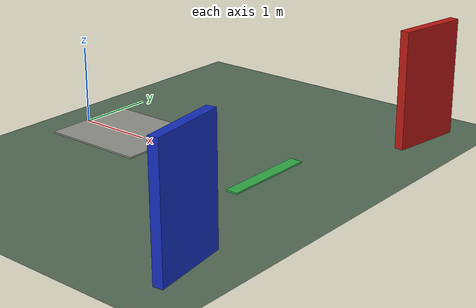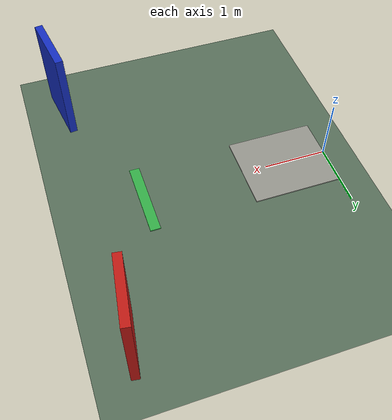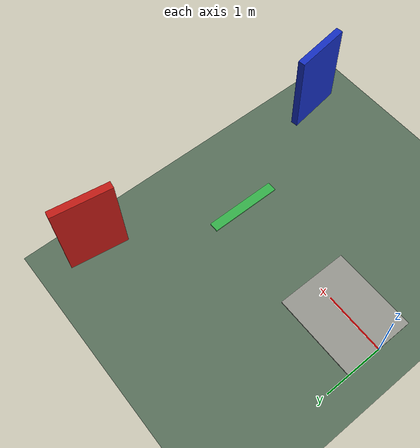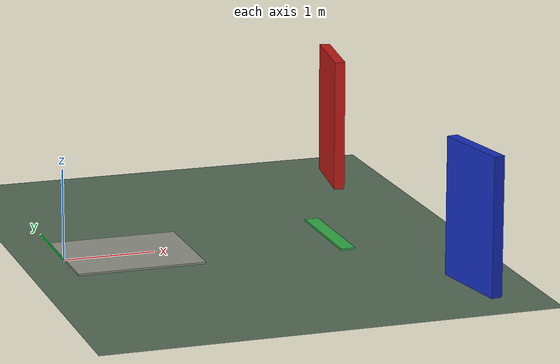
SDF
<?xml version="1.0"?>
<sdf version="1.6">
  <world name="mari_nav2_stage0_empty">
    <gravity>0 0 -9.80665</gravity>

    <spherical_coordinates>
      <heading_deg>180</heading_deg>
    </spherical_coordinates>

    <physics name="default_physics" default="true" type="ode">
      <max_step_size>0.001</max_step_size>
      <real_time_factor>1.0</real_time_factor>
      <real_time_update_rate>1000</real_time_update_rate>
    </physics>

    <scene>
      <ambient>0.62 0.62 0.62 1</ambient>
      <background>0.68 0.80 0.98 1</background>
      <shadows>false</shadows>
    </scene>

    <light name="sun" type="directional">
      <cast_shadows>false</cast_shadows>
      <pose>0 0 10 0 0 0</pose>
      <diffuse>0.95 0.92 0.84 1</diffuse>
      <specular>0.2 0.2 0.18 1</specular>
      <direction>-0.25 0.20 -0.94</direction>
    </light>

    <model name="stage0_ground">
      <static>true</static>
      <link name="link">
        <collision name="ground_collision">
          <geometry><plane><normal>0 0 1</normal><size>10 7</size></plane></geometry>
        </collision>
        <visual name="ground_visual">
          <geometry><plane><normal>0 0 1</normal><size>10 7</size></plane></geometry>
          <material>
            <ambient>0.34 0.43 0.35 1</ambient>
            <diffuse>0.34 0.43 0.35 1</diffuse>
          </material>
        </visual>
      </link>
    </model>

    <model name="stage0_start_pad">
      <static>true</static>
      <link name="link">
        <visual name="start_pad">
          <pose>0.7 0 0.012 0 0 0</pose>
          <geometry><box><size>1.4 1.2 0.02</size></box></geometry>
          <material><ambient>0.58 0.58 0.55 1</ambient><diffuse>0.58 0.58 0.55 1</diffuse></material>
        </visual>
        <visual name="goal_band">
          <pose>3.0 0 0.014 0 0 0</pose>
          <geometry><box><size>0.16 1.2 0.02</size></box></geometry>
          <material><ambient>0.20 0.68 0.28 1</ambient><diffuse>0.20 0.68 0.28 1</diffuse></material>
        </visual>
      </link>
    </model>

    <model name="stage0_far_landmarks">
      <static>true</static>
      <link name="link">
        <visual name="left_red_panel">
          <pose>3.8 2.2 0.75 0 0 -0.15</pose>
          <geometry><box><size>0.12 0.95 1.50</size></box></geometry>
          <material><ambient>0.75 0.10 0.08 1</ambient><diffuse>0.75 0.10 0.08 1</diffuse></material>
        </visual>
        <visual name="right_blue_panel">
          <pose>3.8 -2.2 0.75 0 0 0.15</pose>
          <geometry><box><size>0.12 0.95 1.50</size></box></geometry>
          <material><ambient>0.08 0.18 0.75 1</ambient><diffuse>0.08 0.18 0.75 1</diffuse></material>
        </visual>
      </link>
    </model>
  </world>
</sdf>
